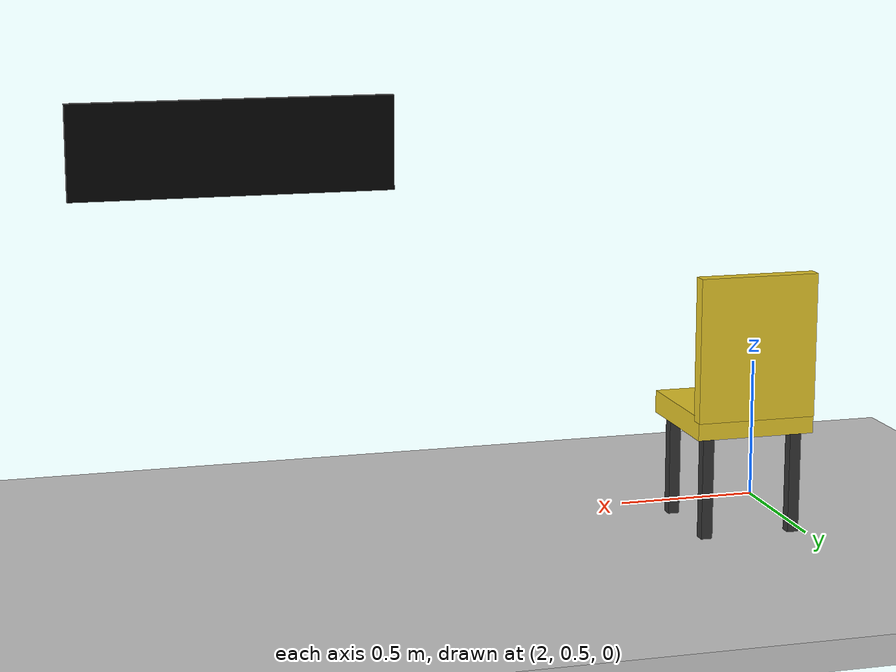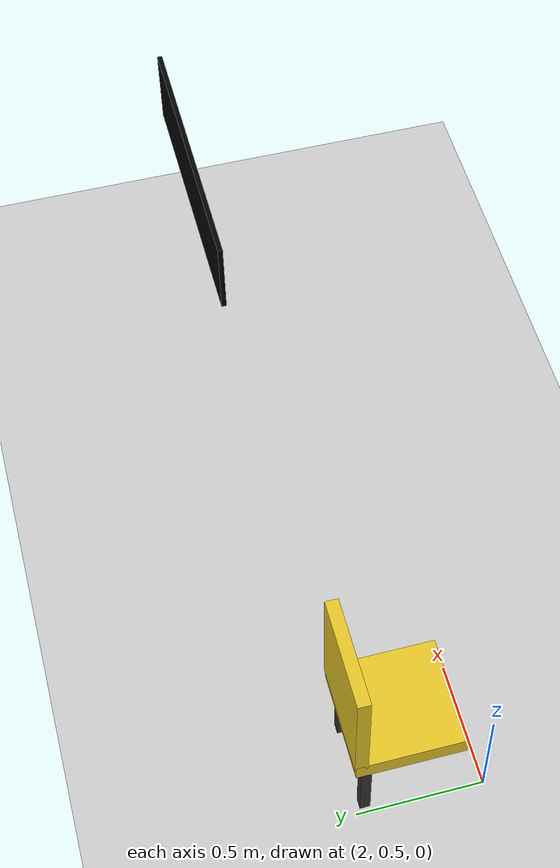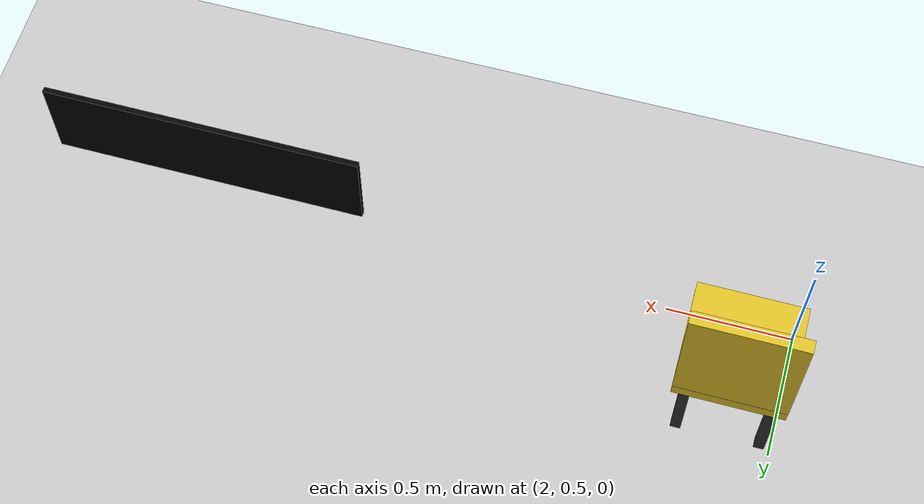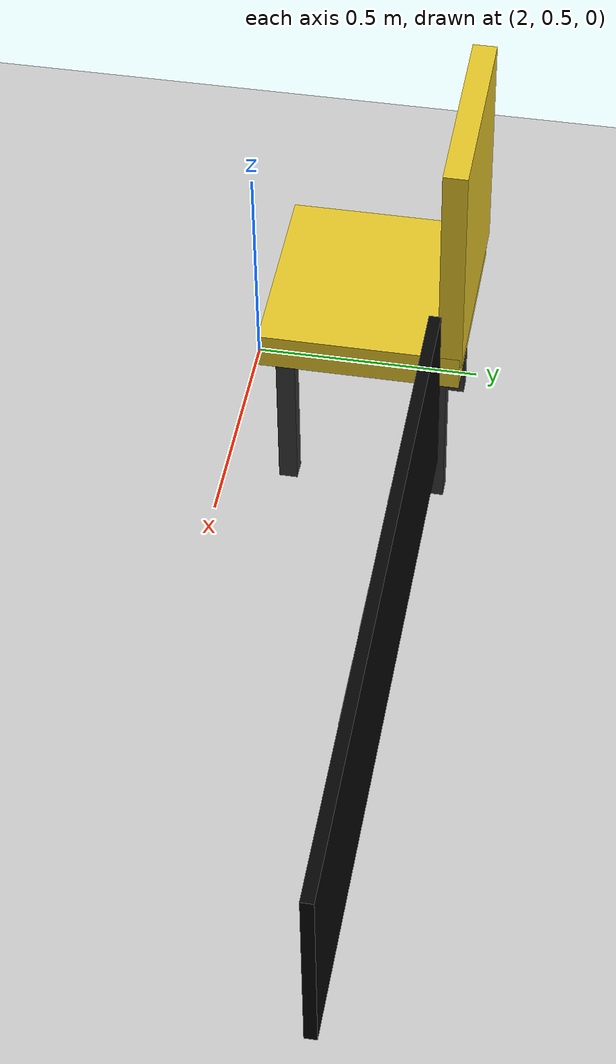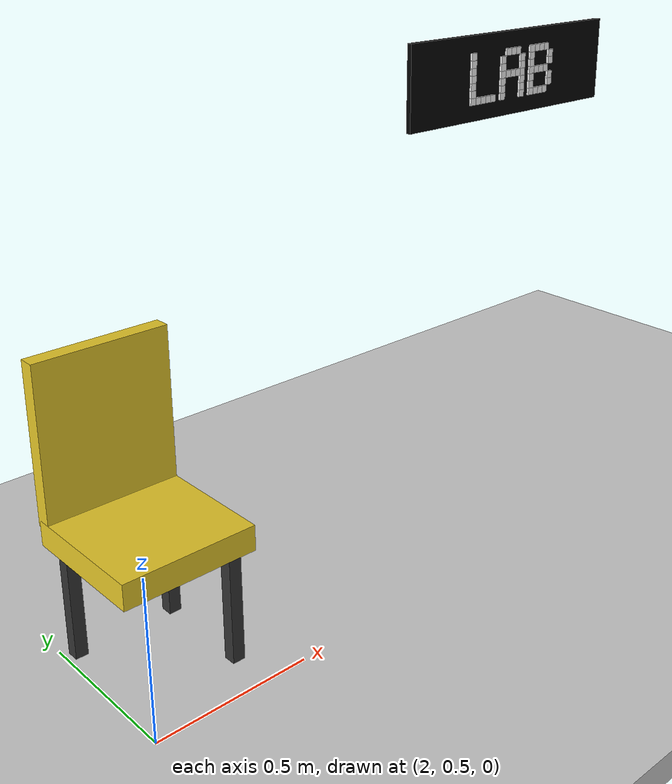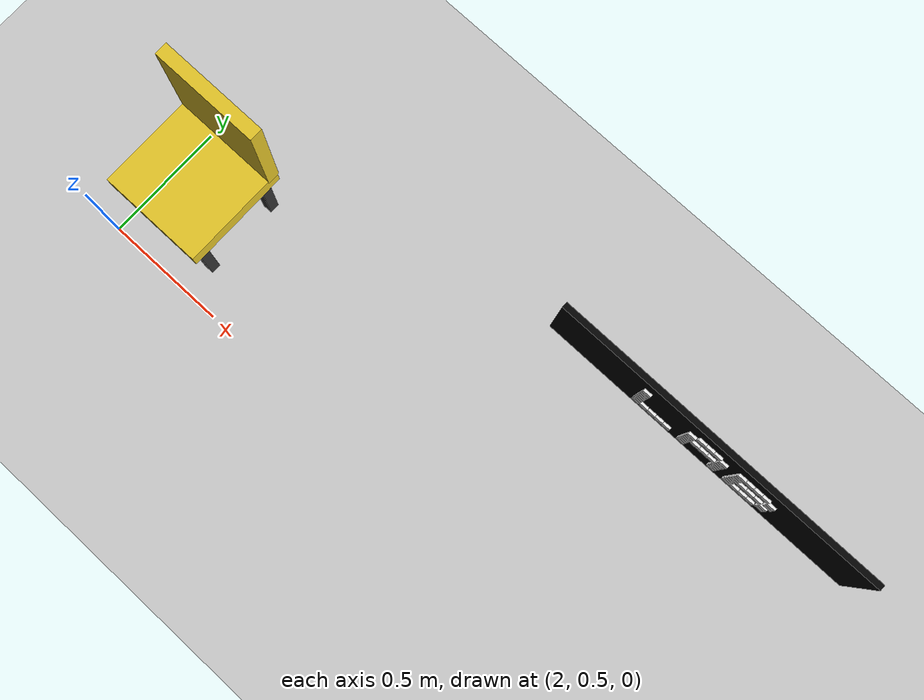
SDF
<sdf version="1.9">
 <world name="default">
  <model name="ground_plane">
   <static>true</static>
   <pose>5.15 0 -0.05 0 0 0</pose>
   <link name="body">
    <collision name="collision"><geometry><box><size>14.3 12 0.1</size></box></geometry></collision>
    <visual name="visual">
     <geometry><box><size>14.3 12 0.1</size></box></geometry>
     <material><ambient>0.8 0.8 0.8 1</ambient><diffuse>0.8 0.8 0.8 1</diffuse></material>
    </visual>
   </link>
  </model>
  <model name="chair_seat">
   <static>true</static>
   <pose>2.2 0.7999999999999999 0.4 0 0 0</pose>
   <link name="body">
    <collision name="collision"><geometry><box><size>0.42 0.42 0.08</size></box></geometry></collision>
    <visual name="visual">
     <geometry><box><size>0.42 0.42 0.08</size></box></geometry>
     <material><ambient>0.9 0.78 0.16 1</ambient><diffuse>0.9 0.78 0.16 1</diffuse></material>
    </visual>
   </link>
  </model>
  <model name="chair_back">
   <static>true</static>
   <pose>2.2 0.99 0.67 0 0 0</pose>
   <link name="body">
    <collision name="collision"><geometry><box><size>0.42 0.05 0.5</size></box></geometry></collision>
    <visual name="visual">
     <geometry><box><size>0.42 0.05 0.5</size></box></geometry>
     <material><ambient>0.9 0.78 0.16 1</ambient><diffuse>0.9 0.78 0.16 1</diffuse></material>
    </visual>
   </link>
  </model>
  <model name="chair_leg_-0.16_0.16">
   <static>true</static>
   <pose>2.04 0.96 0.19 0 0 0</pose>
   <link name="body">
    <collision name="collision"><geometry><box><size>0.04 0.04 0.38</size></box></geometry></collision>
    <visual name="visual">
     <geometry><box><size>0.04 0.04 0.38</size></box></geometry>
     <material><ambient>0.2 0.2 0.2 1</ambient><diffuse>0.2 0.2 0.2 1</diffuse></material>
    </visual>
   </link>
  </model>
  <model name="chair_leg_0.16_-0.16">
   <static>true</static>
   <pose>2.3600000000000003 0.6399999999999999 0.19 0 0 0</pose>
   <link name="body">
    <collision name="collision"><geometry><box><size>0.04 0.04 0.38</size></box></geometry></collision>
    <visual name="visual">
     <geometry><box><size>0.04 0.04 0.38</size></box></geometry>
     <material><ambient>0.2 0.2 0.2 1</ambient><diffuse>0.2 0.2 0.2 1</diffuse></material>
    </visual>
   </link>
  </model>
  <model name="chair_leg_0.16_0.16">
   <static>true</static>
   <pose>2.3600000000000003 0.96 0.19 0 0 0</pose>
   <link name="body">
    <collision name="collision"><geometry><box><size>0.04 0.04 0.38</size></box></geometry></collision>
    <visual name="visual">
     <geometry><box><size>0.04 0.04 0.38</size></box></geometry>
     <material><ambient>0.2 0.2 0.2 1</ambient><diffuse>0.2 0.2 0.2 1</diffuse></material>
    </visual>
   </link>
  </model>
  <model name="readable_r3geo_base_r004_left_1_entrance_corridor">
   <static>true</static>
   <pose>4 1.1 1.43 0 0 0</pose>
   <link name="lettering">
    <visual name="backboard">
     <geometry><box><size>1.02 0.018 0.3</size></box></geometry>
     <material>
      <ambient>.015 .015 .015 1</ambient>
      <diffuse>.015 .015 .015 1</diffuse>
      <emissive>.015 .015 .015 1</emissive>
     </material>
     <cast_shadows>false</cast_shadows>
    </visual>
    <visual name="letter_0_0_0">
     <pose>-0.208 -0.014 0.078 0 0 0</pose>
     <geometry><box><size>0.024439999999999996 0.008 0.024439999999999996</size></box></geometry>
     <material>
      <ambient>.96 .96 .96 1</ambient>
      <diffuse>.96 .96 .96 1</diffuse>
      <emissive>.96 .96 .96 1</emissive>
     </material>
     <cast_shadows>false</cast_shadows>
    </visual>
    <visual name="letter_0_1_0">
     <pose>-0.208 -0.014 0.052 0 0 0</pose>
     <geometry><box><size>0.024439999999999996 0.008 0.024439999999999996</size></box></geometry>
     <material>
      <ambient>.96 .96 .96 1</ambient>
      <diffuse>.96 .96 .96 1</diffuse>
      <emissive>.96 .96 .96 1</emissive>
     </material>
     <cast_shadows>false</cast_shadows>
    </visual>
    <visual name="letter_0_2_0">
     <pose>-0.208 -0.014 0.026 0 0 0</pose>
     <geometry><box><size>0.024439999999999996 0.008 0.024439999999999996</size></box></geometry>
     <material>
      <ambient>.96 .96 .96 1</ambient>
      <diffuse>.96 .96 .96 1</diffuse>
      <emissive>.96 .96 .96 1</emissive>
     </material>
     <cast_shadows>false</cast_shadows>
    </visual>
    <visual name="letter_0_3_0">
     <pose>-0.208 -0.014 0 0 0 0</pose>
     <geometry><box><size>0.024439999999999996 0.008 0.024439999999999996</size></box></geometry>
     <material>
      <ambient>.96 .96 .96 1</ambient>
      <diffuse>.96 .96 .96 1</diffuse>
      <emissive>.96 .96 .96 1</emissive>
     </material>
     <cast_shadows>false</cast_shadows>
    </visual>
    <visual name="letter_0_4_0">
     <pose>-0.208 -0.014 -0.026 0 0 0</pose>
     <geometry><box><size>0.024439999999999996 0.008 0.024439999999999996</size></box></geometry>
     <material>
      <ambient>.96 .96 .96 1</ambient>
      <diffuse>.96 .96 .96 1</diffuse>
      <emissive>.96 .96 .96 1</emissive>
     </material>
     <cast_shadows>false</cast_shadows>
    </visual>
    <visual name="letter_0_5_0">
     <pose>-0.208 -0.014 -0.052 0 0 0</pose>
     <geometry><box><size>0.024439999999999996 0.008 0.024439999999999996</size></box></geometry>
     <material>
      <ambient>.96 .96 .96 1</ambient>
      <diffuse>.96 .96 .96 1</diffuse>
      <emissive>.96 .96 .96 1</emissive>
     </material>
     <cast_shadows>false</cast_shadows>
    </visual>
    <visual name="letter_0_6_0">
     <pose>-0.208 -0.014 -0.078 0 0 0</pose>
     <geometry><box><size>0.024439999999999996 0.008 0.024439999999999996</size></box></geometry>
     <material>
      <ambient>.96 .96 .96 1</ambient>
      <diffuse>.96 .96 .96 1</diffuse>
      <emissive>.96 .96 .96 1</emissive>
     </material>
     <cast_shadows>false</cast_shadows>
    </visual>
    <visual name="letter_0_6_1">
     <pose>-0.182 -0.014 -0.078 0 0 0</pose>
     <geometry><box><size>0.024439999999999996 0.008 0.024439999999999996</size></box></geometry>
     <material>
      <ambient>.96 .96 .96 1</ambient>
      <diffuse>.96 .96 .96 1</diffuse>
      <emissive>.96 .96 .96 1</emissive>
     </material>
     <cast_shadows>false</cast_shadows>
    </visual>
    <visual name="letter_0_6_2">
     <pose>-0.156 -0.014 -0.078 0 0 0</pose>
     <geometry><box><size>0.024439999999999996 0.008 0.024439999999999996</size></box></geometry>
     <material>
      <ambient>.96 .96 .96 1</ambient>
      <diffuse>.96 .96 .96 1</diffuse>
      <emissive>.96 .96 .96 1</emissive>
     </material>
     <cast_shadows>false</cast_shadows>
    </visual>
    <visual name="letter_0_6_3">
     <pose>-0.13 -0.014 -0.078 0 0 0</pose>
     <geometry><box><size>0.024439999999999996 0.008 0.024439999999999996</size></box></geometry>
     <material>
      <ambient>.96 .96 .96 1</ambient>
      <diffuse>.96 .96 .96 1</diffuse>
      <emissive>.96 .96 .96 1</emissive>
     </material>
     <cast_shadows>false</cast_shadows>
    </visual>
    <visual name="letter_0_6_4">
     <pose>-0.104 -0.014 -0.078 0 0 0</pose>
     <geometry><box><size>0.024439999999999996 0.008 0.024439999999999996</size></box></geometry>
     <material>
      <ambient>.96 .96 .96 1</ambient>
      <diffuse>.96 .96 .96 1</diffuse>
      <emissive>.96 .96 .96 1</emissive>
     </material>
     <cast_shadows>false</cast_shadows>
    </visual>
    <visual name="letter_1_0_1">
     <pose>-0.026 -0.014 0.078 0 0 0</pose>
     <geometry><box><size>0.024439999999999996 0.008 0.024439999999999996</size></box></geometry>
     <material>
      <ambient>.96 .96 .96 1</ambient>
      <diffuse>.96 .96 .96 1</diffuse>
      <emissive>.96 .96 .96 1</emissive>
     </material>
     <cast_shadows>false</cast_shadows>
    </visual>
    <visual name="letter_1_0_2">
     <pose>0 -0.014 0.078 0 0 0</pose>
     <geometry><box><size>0.024439999999999996 0.008 0.024439999999999996</size></box></geometry>
     <material>
      <ambient>.96 .96 .96 1</ambient>
      <diffuse>.96 .96 .96 1</diffuse>
      <emissive>.96 .96 .96 1</emissive>
     </material>
     <cast_shadows>false</cast_shadows>
    </visual>
    <visual name="letter_1_0_3">
     <pose>0.026 -0.014 0.078 0 0 0</pose>
     <geometry><box><size>0.024439999999999996 0.008 0.024439999999999996</size></box></geometry>
     <material>
      <ambient>.96 .96 .96 1</ambient>
      <diffuse>.96 .96 .96 1</diffuse>
      <emissive>.96 .96 .96 1</emissive>
     </material>
     <cast_shadows>false</cast_shadows>
    </visual>
    <visual name="letter_1_1_0">
     <pose>-0.052 -0.014 0.052 0 0 0</pose>
     <geometry><box><size>0.024439999999999996 0.008 0.024439999999999996</size></box></geometry>
     <material>
      <ambient>.96 .96 .96 1</ambient>
      <diffuse>.96 .96 .96 1</diffuse>
      <emissive>.96 .96 .96 1</emissive>
     </material>
     <cast_shadows>false</cast_shadows>
    </visual>
    <visual name="letter_1_1_4">
     <pose>0.052 -0.014 0.052 0 0 0</pose>
     <geometry><box><size>0.024439999999999996 0.008 0.024439999999999996</size></box></geometry>
     <material>
      <ambient>.96 .96 .96 1</ambient>
      <diffuse>.96 .96 .96 1</diffuse>
      <emissive>.96 .96 .96 1</emissive>
     </material>
     <cast_shadows>false</cast_shadows>
    </visual>
    <visual name="letter_1_2_0">
     <pose>-0.052 -0.014 0.026 0 0 0</pose>
     <geometry><box><size>0.024439999999999996 0.008 0.024439999999999996</size></box></geometry>
     <material>
      <ambient>.96 .96 .96 1</ambient>
      <diffuse>.96 .96 .96 1</diffuse>
      <emissive>.96 .96 .96 1</emissive>
     </material>
     <cast_shadows>false</cast_shadows>
    </visual>
    <visual name="letter_1_2_4">
     <pose>0.052 -0.014 0.026 0 0 0</pose>
     <geometry><box><size>0.024439999999999996 0.008 0.024439999999999996</size></box></geometry>
     <material>
      <ambient>.96 .96 .96 1</ambient>
      <diffuse>.96 .96 .96 1</diffuse>
      <emissive>.96 .96 .96 1</emissive>
     </material>
     <cast_shadows>false</cast_shadows>
    </visual>
    <visual name="letter_1_3_0">
     <pose>-0.052 -0.014 0 0 0 0</pose>
     <geometry><box><size>0.024439999999999996 0.008 0.024439999999999996</size></box></geometry>
     <material>
      <ambient>.96 .96 .96 1</ambient>
      <diffuse>.96 .96 .96 1</diffuse>
      <emissive>.96 .96 .96 1</emissive>
     </material>
     <cast_shadows>false</cast_shadows>
    </visual>
    <visual name="letter_1_3_1">
     <pose>-0.026 -0.014 0 0 0 0</pose>
     <geometry><box><size>0.024439999999999996 0.008 0.024439999999999996</size></box></geometry>
     <material>
      <ambient>.96 .96 .96 1</ambient>
      <diffuse>.96 .96 .96 1</diffuse>
      <emissive>.96 .96 .96 1</emissive>
     </material>
     <cast_shadows>false</cast_shadows>
    </visual>
    <visual name="letter_1_3_2">
     <pose>0 -0.014 0 0 0 0</pose>
     <geometry><box><size>0.024439999999999996 0.008 0.024439999999999996</size></box></geometry>
     <material>
      <ambient>.96 .96 .96 1</ambient>
      <diffuse>.96 .96 .96 1</diffuse>
      <emissive>.96 .96 .96 1</emissive>
     </material>
     <cast_shadows>false</cast_shadows>
    </visual>
    <visual name="letter_1_3_3">
     <pose>0.026 -0.014 0 0 0 0</pose>
     <geometry><box><size>0.024439999999999996 0.008 0.024439999999999996</size></box></geometry>
     <material>
      <ambient>.96 .96 .96 1</ambient>
      <diffuse>.96 .96 .96 1</diffuse>
      <emissive>.96 .96 .96 1</emissive>
     </material>
     <cast_shadows>false</cast_shadows>
    </visual>
    <visual name="letter_1_3_4">
     <pose>0.052 -0.014 0 0 0 0</pose>
     <geometry><box><size>0.024439999999999996 0.008 0.024439999999999996</size></box></geometry>
     <material>
      <ambient>.96 .96 .96 1</ambient>
      <diffuse>.96 .96 .96 1</diffuse>
      <emissive>.96 .96 .96 1</emissive>
     </material>
     <cast_shadows>false</cast_shadows>
    </visual>
    <visual name="letter_1_4_0">
     <pose>-0.052 -0.014 -0.026 0 0 0</pose>
     <geometry><box><size>0.024439999999999996 0.008 0.024439999999999996</size></box></geometry>
     <material>
      <ambient>.96 .96 .96 1</ambient>
      <diffuse>.96 .96 .96 1</diffuse>
      <emissive>.96 .96 .96 1</emissive>
     </material>
     <cast_shadows>false</cast_shadows>
    </visual>
    <visual name="letter_1_4_4">
     <pose>0.052 -0.014 -0.026 0 0 0</pose>
     <geometry><box><size>0.024439999999999996 0.008 0.024439999999999996</size></box></geometry>
     <material>
      <ambient>.96 .96 .96 1</ambient>
      <diffuse>.96 .96 .96 1</diffuse>
      <emissive>.96 .96 .96 1</emissive>
     </material>
     <cast_shadows>false</cast_shadows>
    </visual>
    <visual name="letter_1_5_0">
     <pose>-0.052 -0.014 -0.052 0 0 0</pose>
     <geometry><box><size>0.024439999999999996 0.008 0.024439999999999996</size></box></geometry>
     <material>
      <ambient>.96 .96 .96 1</ambient>
      <diffuse>.96 .96 .96 1</diffuse>
      <emissive>.96 .96 .96 1</emissive>
     </material>
     <cast_shadows>false</cast_shadows>
    </visual>
    <visual name="letter_1_5_4">
     <pose>0.052 -0.014 -0.052 0 0 0</pose>
     <geometry><box><size>0.024439999999999996 0.008 0.024439999999999996</size></box></geometry>
     <material>
      <ambient>.96 .96 .96 1</ambient>
      <diffuse>.96 .96 .96 1</diffuse>
      <emissive>.96 .96 .96 1</emissive>
     </material>
     <cast_shadows>false</cast_shadows>
    </visual>
    <visual name="letter_1_6_0">
     <pose>-0.052 -0.014 -0.078 0 0 0</pose>
     <geometry><box><size>0.024439999999999996 0.008 0.024439999999999996</size></box></geometry>
     <material>
      <ambient>.96 .96 .96 1</ambient>
      <diffuse>.96 .96 .96 1</diffuse>
      <emissive>.96 .96 .96 1</emissive>
     </material>
     <cast_shadows>false</cast_shadows>
    </visual>
    <visual name="letter_1_6_4">
     <pose>0.052 -0.014 -0.078 0 0 0</pose>
     <geometry><box><size>0.024439999999999996 0.008 0.024439999999999996</size></box></geometry>
     <material>
      <ambient>.96 .96 .96 1</ambient>
      <diffuse>.96 .96 .96 1</diffuse>
      <emissive>.96 .96 .96 1</emissive>
     </material>
     <cast_shadows>false</cast_shadows>
    </visual>
    <visual name="letter_2_0_0">
     <pose>0.104 -0.014 0.078 0 0 0</pose>
     <geometry><box><size>0.024439999999999996 0.008 0.024439999999999996</size></box></geometry>
     <material>
      <ambient>.96 .96 .96 1</ambient>
      <diffuse>.96 .96 .96 1</diffuse>
      <emissive>.96 .96 .96 1</emissive>
     </material>
     <cast_shadows>false</cast_shadows>
    </visual>
    <visual name="letter_2_0_1">
     <pose>0.13 -0.014 0.078 0 0 0</pose>
     <geometry><box><size>0.024439999999999996 0.008 0.024439999999999996</size></box></geometry>
     <material>
      <ambient>.96 .96 .96 1</ambient>
      <diffuse>.96 .96 .96 1</diffuse>
      <emissive>.96 .96 .96 1</emissive>
     </material>
     <cast_shadows>false</cast_shadows>
    </visual>
    <visual name="letter_2_0_2">
     <pose>0.156 -0.014 0.078 0 0 0</pose>
     <geometry><box><size>0.024439999999999996 0.008 0.024439999999999996</size></box></geometry>
     <material>
      <ambient>.96 .96 .96 1</ambient>
      <diffuse>.96 .96 .96 1</diffuse>
      <emissive>.96 .96 .96 1</emissive>
     </material>
     <cast_shadows>false</cast_shadows>
    </visual>
    <visual name="letter_2_0_3">
     <pose>0.182 -0.014 0.078 0 0 0</pose>
     <geometry><box><size>0.024439999999999996 0.008 0.024439999999999996</size></box></geometry>
     <material>
      <ambient>.96 .96 .96 1</ambient>
      <diffuse>.96 .96 .96 1</diffuse>
      <emissive>.96 .96 .96 1</emissive>
     </material>
     <cast_shadows>false</cast_shadows>
    </visual>
    <visual name="letter_2_1_0">
     <pose>0.104 -0.014 0.052 0 0 0</pose>
     <geometry><box><size>0.024439999999999996 0.008 0.024439999999999996</size></box></geometry>
     <material>
      <ambient>.96 .96 .96 1</ambient>
      <diffuse>.96 .96 .96 1</diffuse>
      <emissive>.96 .96 .96 1</emissive>
     </material>
     <cast_shadows>false</cast_shadows>
    </visual>
    <visual name="letter_2_1_4">
     <pose>0.208 -0.014 0.052 0 0 0</pose>
     <geometry><box><size>0.024439999999999996 0.008 0.024439999999999996</size></box></geometry>
     <material>
      <ambient>.96 .96 .96 1</ambient>
      <diffuse>.96 .96 .96 1</diffuse>
      <emissive>.96 .96 .96 1</emissive>
     </material>
     <cast_shadows>false</cast_shadows>
    </visual>
    <visual name="letter_2_2_0">
     <pose>0.104 -0.014 0.026 0 0 0</pose>
     <geometry><box><size>0.024439999999999996 0.008 0.024439999999999996</size></box></geometry>
     <material>
      <ambient>.96 .96 .96 1</ambient>
      <diffuse>.96 .96 .96 1</diffuse>
      <emissive>.96 .96 .96 1</emissive>
     </material>
     <cast_shadows>false</cast_shadows>
    </visual>
    <visual name="letter_2_2_4">
     <pose>0.208 -0.014 0.026 0 0 0</pose>
     <geometry><box><size>0.024439999999999996 0.008 0.024439999999999996</size></box></geometry>
     <material>
      <ambient>.96 .96 .96 1</ambient>
      <diffuse>.96 .96 .96 1</diffuse>
      <emissive>.96 .96 .96 1</emissive>
     </material>
     <cast_shadows>false</cast_shadows>
    </visual>
    <visual name="letter_2_3_0">
     <pose>0.104 -0.014 0 0 0 0</pose>
     <geometry><box><size>0.024439999999999996 0.008 0.024439999999999996</size></box></geometry>
     <material>
      <ambient>.96 .96 .96 1</ambient>
      <diffuse>.96 .96 .96 1</diffuse>
      <emissive>.96 .96 .96 1</emissive>
     </material>
     <cast_shadows>false</cast_shadows>
    </visual>
    <visual name="letter_2_3_1">
     <pose>0.13 -0.014 0 0 0 0</pose>
     <geometry><box><size>0.024439999999999996 0.008 0.024439999999999996</size></box></geometry>
     <material>
      <ambient>.96 .96 .96 1</ambient>
      <diffuse>.96 .96 .96 1</diffuse>
      <emissive>.96 .96 .96 1</emissive>
     </material>
     <cast_shadows>false</cast_shadows>
    </visual>
    <visual name="letter_2_3_2">
     <pose>0.156 -0.014 0 0 0 0</pose>
     <geometry><box><size>0.024439999999999996 0.008 0.024439999999999996</size></box></geometry>
     <material>
      <ambient>.96 .96 .96 1</ambient>
      <diffuse>.96 .96 .96 1</diffuse>
      <emissive>.96 .96 .96 1</emissive>
     </material>
     <cast_shadows>false</cast_shadows>
    </visual>
    <visual name="letter_2_3_3">
     <pose>0.182 -0.014 0 0 0 0</pose>
     <geometry><box><size>0.024439999999999996 0.008 0.024439999999999996</size></box></geometry>
     <material>
      <ambient>.96 .96 .96 1</ambient>
      <diffuse>.96 .96 .96 1</diffuse>
      <emissive>.96 .96 .96 1</emissive>
     </material>
     <cast_shadows>false</cast_shadows>
    </visual>
    <visual name="letter_2_4_0">
     <pose>0.104 -0.014 -0.026 0 0 0</pose>
     <geometry><box><size>0.024439999999999996 0.008 0.024439999999999996</size></box></geometry>
     <material>
      <ambient>.96 .96 .96 1</ambient>
      <diffuse>.96 .96 .96 1</diffuse>
      <emissive>.96 .96 .96 1</emissive>
     </material>
     <cast_shadows>false</cast_shadows>
    </visual>
    <visual name="letter_2_4_4">
     <pose>0.208 -0.014 -0.026 0 0 0</pose>
     <geometry><box><size>0.024439999999999996 0.008 0.024439999999999996</size></box></geometry>
     <material>
      <ambient>.96 .96 .96 1</ambient>
      <diffuse>.96 .96 .96 1</diffuse>
      <emissive>.96 .96 .96 1</emissive>
     </material>
     <cast_shadows>false</cast_shadows>
    </visual>
    <visual name="letter_2_5_0">
     <pose>0.104 -0.014 -0.052 0 0 0</pose>
     <geometry><box><size>0.024439999999999996 0.008 0.024439999999999996</size></box></geometry>
     <material>
      <ambient>.96 .96 .96 1</ambient>
      <diffuse>.96 .96 .96 1</diffuse>
      <emissive>.96 .96 .96 1</emissive>
     </material>
     <cast_shadows>false</cast_shadows>
    </visual>
    <visual name="letter_2_5_4">
     <pose>0.208 -0.014 -0.052 0 0 0</pose>
     <geometry><box><size>0.024439999999999996 0.008 0.024439999999999996</size></box></geometry>
     <material>
      <ambient>.96 .96 .96 1</ambient>
      <diffuse>.96 .96 .96 1</diffuse>
      <emissive>.96 .96 .96 1</emissive>
     </material>
     <cast_shadows>false</cast_shadows>
    </visual>
    <visual name="letter_2_6_0">
     <pose>0.104 -0.014 -0.078 0 0 0</pose>
     <geometry><box><size>0.024439999999999996 0.008 0.024439999999999996</size></box></geometry>
     <material>
      <ambient>.96 .96 .96 1</ambient>
      <diffuse>.96 .96 .96 1</diffuse>
      <emissive>.96 .96 .96 1</emissive>
     </material>
     <cast_shadows>false</cast_shadows>
    </visual>
    <visual name="letter_2_6_1">
     <pose>0.13 -0.014 -0.078 0 0 0</pose>
     <geometry><box><size>0.024439999999999996 0.008 0.024439999999999996</size></box></geometry>
     <material>
      <ambient>.96 .96 .96 1</ambient>
      <diffuse>.96 .96 .96 1</diffuse>
      <emissive>.96 .96 .96 1</emissive>
     </material>
     <cast_shadows>false</cast_shadows>
    </visual>
    <visual name="letter_2_6_2">
     <pose>0.156 -0.014 -0.078 0 0 0</pose>
     <geometry><box><size>0.024439999999999996 0.008 0.024439999999999996</size></box></geometry>
     <material>
      <ambient>.96 .96 .96 1</ambient>
      <diffuse>.96 .96 .96 1</diffuse>
      <emissive>.96 .96 .96 1</emissive>
     </material>
     <cast_shadows>false</cast_shadows>
    </visual>
    <visual name="letter_2_6_3">
     <pose>0.182 -0.014 -0.078 0 0 0</pose>
     <geometry><box><size>0.024439999999999996 0.008 0.024439999999999996</size></box></geometry>
     <material>
      <ambient>.96 .96 .96 1</ambient>
      <diffuse>.96 .96 .96 1</diffuse>
      <emissive>.96 .96 .96 1</emissive>
     </material>
     <cast_shadows>false</cast_shadows>
    </visual>
   </link>
  </model>
 </world>
</sdf>
